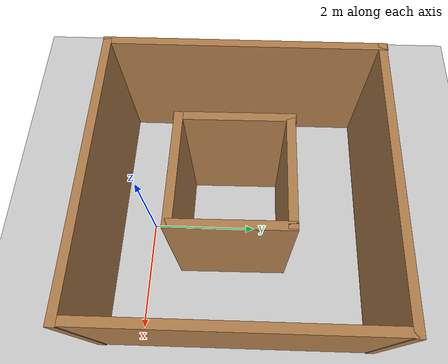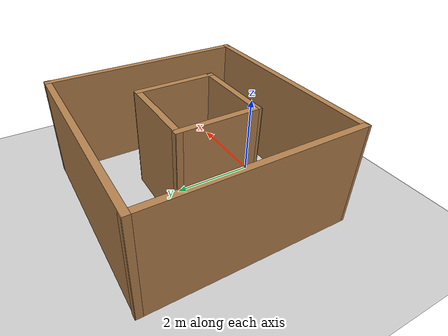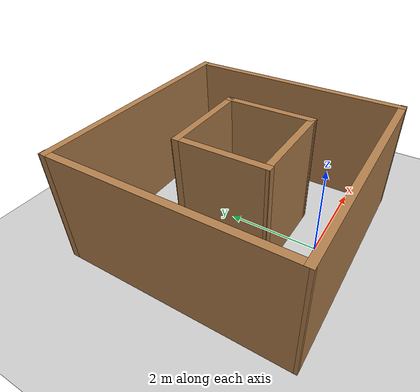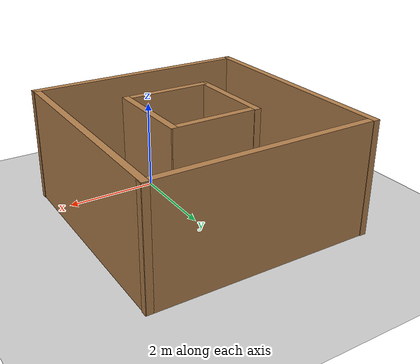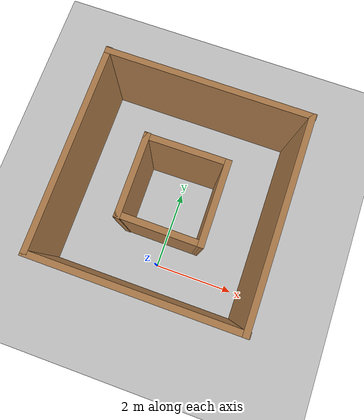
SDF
<sdf version="1.6">
 <world name="default">
  <light name="sun" type="directional">
   <pose>0 0 15 0 -0 0</pose>
   <diffuse>0.8 0.8 0.8 1</diffuse>
   <specular>0.2 0.2 0.2 1</specular>
   <attenuation>
    <range>1000</range>
    <constant>0.9</constant>
    <linear>0.01</linear>
    <quadratic>0.001</quadratic>
   </attenuation>
   <direction>-0.5 0.1 -0.9</direction>
  </light>
  <model name="ground_plane">
   <static>1</static>
   <link name="link">
    <collision name="collision">
     <geometry><plane><normal>0 0 1</normal><size>100 100</size></plane></geometry>
     <surface><friction><ode><mu>100</mu><mu2>50</mu2></ode></friction></surface>
    </collision>
    <visual name="visual">
     <transparency>1</transparency>
     <cast_shadows>0</cast_shadows>
     <geometry><plane><normal>0 0 1</normal><size>100 100</size></plane></geometry>
     <material>
      <script><uri>file://media/materials/scripts/gazebo.material</uri><name>Gazebo/Grey</name></script>
     </material>
    </visual>
   </link>
  </model>
  <gravity>0 0 -9.8</gravity>
  <magnetic_field>6e-06 2.3e-05 -4.2e-05</magnetic_field>
  <atmosphere type="adiabatic"/>
  <physics name="default_physics" default="0" type="ode">
   <max_step_size>0.001</max_step_size>
   <real_time_factor>1</real_time_factor>
   <real_time_update_rate>1000</real_time_update_rate>
  </physics>
  <scene><ambient>0.4 0.4 0.4 1</ambient><background>0.7 0.7 0.7 1</background><shadows>1</shadows></scene>
  <audio><device>default</device></audio>
  <spherical_coordinates>
   <surface_model>EARTH_WGS84</surface_model>
   <latitude_deg>0</latitude_deg>
   <longitude_deg>0</longitude_deg>
   <elevation>0</elevation>
   <heading_deg>0</heading_deg>
  </spherical_coordinates>
  <model name="Circuit">
   <pose>-0.165104 1.7264 0 0 -0 0</pose>
   <link name="Wall_10">
    <collision name="Wall_10_Collision">
     <geometry><box><size>5.02647 0.15 2.5</size></box></geometry>
     <pose>0 0 1.25 0 -0 0</pose>
    </collision>
    <visual name="Wall_10_Visual">
     <pose>0 0 1.25 0 -0 0</pose>
     <geometry><box><size>5.02647 0.15 2.5</size></box></geometry>
     <material>
      <script><uri>file://media/materials/scripts/gazebo.material</uri><name>Gazebo/Wood</name></script>
      <ambient>1 1 1 1</ambient>
     </material>
     <meta><layer>0</layer></meta>
    </visual>
    <pose>0 -2.45199 0 0 -0 -0.002712</pose>
   </link>
   <link name="Wall_11">
    <collision name="Wall_11_Collision">
     <geometry><box><size>5.05417 0.15 2.5</size></box></geometry>
     <pose>0 0 1.25 0 -0 0</pose>
    </collision>
    <visual name="Wall_11_Visual">
     <pose>0 0 1.25 0 -0 0</pose>
     <geometry><box><size>5.05417 0.15 2.5</size></box></geometry>
     <material>
      <script><uri>file://media/materials/scripts/gazebo.material</uri><name>Gazebo/Wood</name></script>
      <ambient>1 1 1 1</ambient>
     </material>
     <meta><layer>0</layer></meta>
    </visual>
    <pose>2.425 -0.006511 0 0 -0 1.5708</pose>
   </link>
   <link name="Wall_12">
    <collision name="Wall_12_Collision">
     <geometry><box><size>5.02645 0.15 2.5</size></box></geometry>
     <pose>0 0 1.25 0 -0 0</pose>
    </collision>
    <visual name="Wall_12_Visual">
     <pose>0 0 1.25 0 -0 0</pose>
     <geometry><box><size>5.02645 0.15 2.5</size></box></geometry>
     <material>
      <script><uri>file://media/materials/scripts/gazebo.material</uri><name>Gazebo/Wood</name></script>
      <ambient>1 1 1 1</ambient>
     </material>
     <meta><layer>0</layer></meta>
    </visual>
    <pose>0 2.44558 0 0 -0 3.14159</pose>
   </link>
   <link name="Wall_13">
    <collision name="Wall_13_Collision">
     <geometry><box><size>5.05417 0.15 2.5</size></box></geometry>
     <pose>0 0 1.25 0 -0 0</pose>
    </collision>
    <visual name="Wall_13_Visual">
     <pose>0 0 1.25 0 -0 0</pose>
     <geometry><box><size>5.05417 0.15 2.5</size></box></geometry>
     <material>
      <script><uri>file://media/materials/scripts/gazebo.material</uri><name>Gazebo/Wood</name></script>
      <ambient>1 1 1 1</ambient>
     </material>
     <meta><layer>0</layer></meta>
    </visual>
    <pose>-2.43823 0.006714 0 0 -0 -1.5708</pose>
   </link>
   <link name="Wall_15">
    <collision name="Wall_15_Collision">
     <geometry><box><size>2.00005 0.15 2.5</size></box></geometry>
     <pose>0 0 1.25 0 -0 0</pose>
    </collision>
    <visual name="Wall_15_Visual">
     <pose>0 0 1.25 0 -0 0</pose>
     <geometry><box><size>2.00005 0.15 2.5</size></box></geometry>
     <material>
      <script><uri>file://media/materials/scripts/gazebo.material</uri><name>Gazebo/Wood</name></script>
      <ambient>1 1 1 1</ambient>
     </material>
     <meta><layer>0</layer></meta>
    </visual>
    <pose>0.042766 -1.0442 0 0 -0 -0.007149</pose>
   </link>
   <link name="Wall_16">
    <collision name="Wall_16_Collision">
     <geometry><box><size>2.01327 0.15 2.5</size></box></geometry>
     <pose>0 0 1.25 0 -0 0</pose>
    </collision>
    <visual name="Wall_16_Visual">
     <pose>0 0 1.25 0 -0 0</pose>
     <geometry><box><size>2.01327 0.15 2.5</size></box></geometry>
     <material>
      <script><uri>file://media/materials/scripts/gazebo.material</uri><name>Gazebo/Wood</name></script>
      <ambient>1 1 1 1</ambient>
     </material>
     <meta><layer>0</layer></meta>
    </visual>
    <pose>0.987604 -0.119199 0 0 -0 1.57789</pose>
   </link>
   <link name="Wall_17">
    <collision name="Wall_17_Collision">
     <geometry><box><size>2.00005 0.15 2.5</size></box></geometry>
     <pose>0 0 1.25 0 -0 0</pose>
    </collision>
    <visual name="Wall_17_Visual">
     <pose>0 0 1.25 0 -0 0</pose>
     <geometry><box><size>2.00005 0.15 2.5</size></box></geometry>
     <material>
      <script><uri>file://media/materials/scripts/gazebo.material</uri><name>Gazebo/Wood</name></script>
      <ambient>1 1 1 1</ambient>
     </material>
     <meta><layer>0</layer></meta>
    </visual>
    <pose>0.029541 0.805801 0 0 -0 -3.13444</pose>
   </link>
   <link name="Wall_18">
    <collision name="Wall_18_Collision">
     <geometry><box><size>2.01327 0.15 2.5</size></box></geometry>
     <pose>0 0 1.25 0 -0 0</pose>
    </collision>
    <visual name="Wall_18_Visual">
     <pose>0 0 1.25 0 -0 0</pose>
     <geometry><box><size>2.01327 0.15 2.5</size></box></geometry>
     <material>
      <script><uri>file://media/materials/scripts/gazebo.material</uri><name>Gazebo/Wood</name></script>
      <ambient>1 1 1 1</ambient>
     </material>
     <meta><layer>0</layer></meta>
    </visual>
    <pose>-0.888846 -0.119199 0 0 -0 -1.5637</pose>
   </link>
   <static>1</static>
  </model>
 </world>
</sdf>
